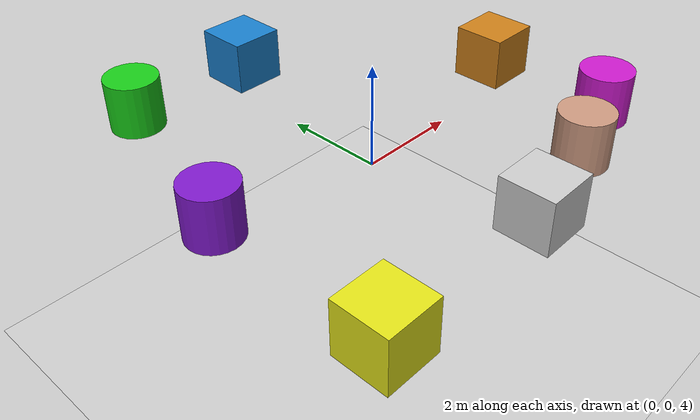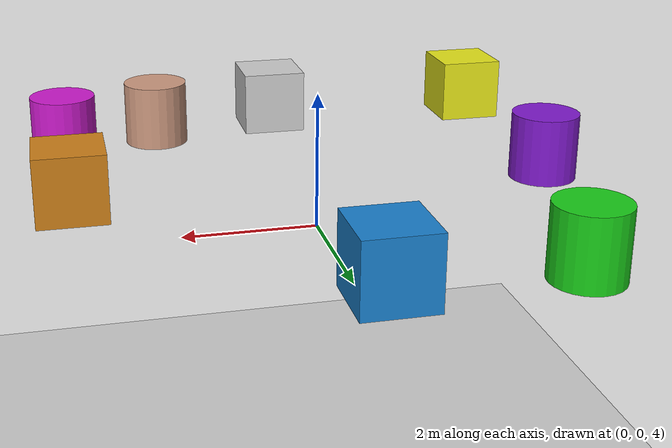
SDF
<sdf version="1.6">
 <world name="default">
  <physics name="1ms" type="ignored">
   <max_step_size>0.001</max_step_size>
   <real_time_factor>1.0</real_time_factor>
  </physics>
  <plugin filename="gz-sim-physics-system" name="gz::sim::systems::Physics"/>
  <plugin filename="gz-sim-user-commands-system" name="gz::sim::systems::UserCommands"/>
  <plugin filename="gz-sim-scene-broadcaster-system" name="gz::sim::systems::SceneBroadcaster"/>
  <plugin filename="gz-sim-sensors-system" name="gz::sim::systems::Sensors">
   <render_engine>ogre</render_engine>
  </plugin>
  <plugin filename="gz-sim-imu-system" name="gz::sim::systems::Imu"/>
  <plugin filename="gz-sim-contact-system" name="gz::sim::systems::Contact"/>
  <light type="directional" name="sun">
   <pose>1 2 4 0 0 0</pose>
   <diffuse>0.8 0.8 0.8 1</diffuse>
   <specular>0.2 0.2 0.2 1</specular>
   <attenuation>
    <range>1000</range>
    <constant>0.9</constant>
    <linear>0.01</linear>
    <quadratic>0.001</quadratic>
   </attenuation>
   <direction>-0.5 0.1 -0.9</direction>
  </light>
  <model name="ground_plane">
   <static>true</static>
   <link name="link">
    <collision name="collision">
     <geometry><plane><normal>0 0 1</normal><size>100 100</size></plane></geometry>
    </collision>
    <visual name="visual">
     <geometry><plane><normal>0 0 1</normal><size>100 100</size></plane></geometry>
     <material>
      <ambient>0.8 0.8 0.8 0</ambient>
      <diffuse>0.8 0.8 0.8 0</diffuse>
      <specular>0.8 0.8 0.8 0</specular>
     </material>
    </visual>
   </link>
  </model>
  <model name="my_cube">
   <pose>0 3.5 5 0 0 0</pose>
   <link name="link">
    <visual name="visual">
     <geometry><box><size>1 1 1</size></box></geometry>
     <material>
      <ambient>0.1 0.5 0.8 1</ambient>
      <diffuse>0.1 0.5 0.8 1</diffuse>
      <specular>0.5 0.5 0.5 1</specular>
     </material>
    </visual>
    <collision name="collision"><geometry><box><size>1 1 1</size></box></geometry></collision>
   </link>
  </model>
  <model name="my_cube1">
   <pose>3.5 0 5 0 0 0</pose>
   <link name="link">
    <visual name="visual">
     <geometry><box><size>1 1 1</size></box></geometry>
     <material>
      <ambient>0.8 0.5 0.1 1</ambient>
      <diffuse>0.8 0.5 0.1 1</diffuse>
      <specular>0.5 0.5 0.5 1</specular>
     </material>
    </visual>
    <collision name="collision"><geometry><box><size>1 1 1</size></box></geometry></collision>
   </link>
  </model>
  <model name="my_cylinder">
   <pose>-3.5 0 5 0 0 0</pose>
   <link name="link">
    <visual name="visual">
     <geometry><cylinder><radius>0.5</radius><length>1.0</length></cylinder></geometry>
     <material>
      <ambient>0.5 0.1 0.8 1</ambient>
      <diffuse>0.5 0.1 0.8 1</diffuse>
      <specular>0.5 0.5 0.5 1</specular>
     </material>
    </visual>
    <collision name="collision">
     <geometry><cylinder><radius>0.5</radius><length>1.0</length></cylinder></geometry>
    </collision>
   </link>
  </model>
  <model name="my_cube2">
   <pose>0 -3.5 5 0 0 0</pose>
   <link name="link">
    <visual name="visual">
     <geometry><box><size>1 1 1</size></box></geometry>
     <material>
      <ambient>0.8 0.8 0.8 1</ambient>
      <diffuse>0.8 0.8 0.8 1</diffuse>
      <specular>0.5 0.5 0.5 1</specular>
     </material>
    </visual>
    <collision name="collision"><geometry><box><size>1 1 1</size></box></geometry></collision>
   </link>
  </model>
  <model name="my_cylinder1">
   <pose>2 -3 5 0 0 0</pose>
   <link name="link">
    <visual name="visual">
     <geometry><cylinder><radius>0.5</radius><length>1.0</length></cylinder></geometry>
     <material>
      <ambient>0.8 0.6 0.5 1</ambient>
      <diffuse>0.8 0.6 0.5 1</diffuse>
      <specular>0.5 0.5 0.5 1</specular>
     </material>
    </visual>
    <collision name="collision">
     <geometry><cylinder><radius>0.5</radius><length>1.0</length></cylinder></geometry>
    </collision>
   </link>
  </model>
  <model name="my_cylinder2">
   <pose>3.5 -2.5 5 0 0 0</pose>
   <link name="link">
    <visual name="visual">
     <geometry><cylinder><radius>0.5</radius><length>1.0</length></cylinder></geometry>
     <material>
      <ambient>0.8 0.1 0.8 1</ambient>
      <diffuse>0.8 0.1 0.8 1</diffuse>
      <specular>0.5 0.5 0.5 1</specular>
     </material>
    </visual>
    <collision name="collision">
     <geometry><cylinder><radius>0.5</radius><length>1.0</length></cylinder></geometry>
    </collision>
   </link>
  </model>
  <model name="my_cube3">
   <pose>-3.5 -3.5 5 0 0 0</pose>
   <link name="link">
    <visual name="visual">
     <geometry><box><size>1 1 1</size></box></geometry>
     <material>
      <ambient>0.9 0.9 0.1 1</ambient>
      <diffuse>0.9 0.9 0.1 1</diffuse>
      <specular>0.5 0.5 0.5 1</specular>
     </material>
    </visual>
    <collision name="collision"><geometry><box><size>1 1 1</size></box></geometry></collision>
   </link>
  </model>
  <model name="my_cylinder3">
   <pose>-2.5 3.5 5 0 0 0</pose>
   <link name="link">
    <visual name="visual">
     <geometry><cylinder><radius>0.5</radius><length>1.0</length></cylinder></geometry>
     <material>
      <ambient>0.1 0.8 0.1 1</ambient>
      <diffuse>0.1 0.8 0.1 1</diffuse>
      <specular>0.5 0.5 0.5 1</specular>
     </material>
    </visual>
    <collision name="collision">
     <geometry><cylinder><radius>0.5</radius><length>1.0</length></cylinder></geometry>
    </collision>
   </link>
  </model>
 </world>
</sdf>
